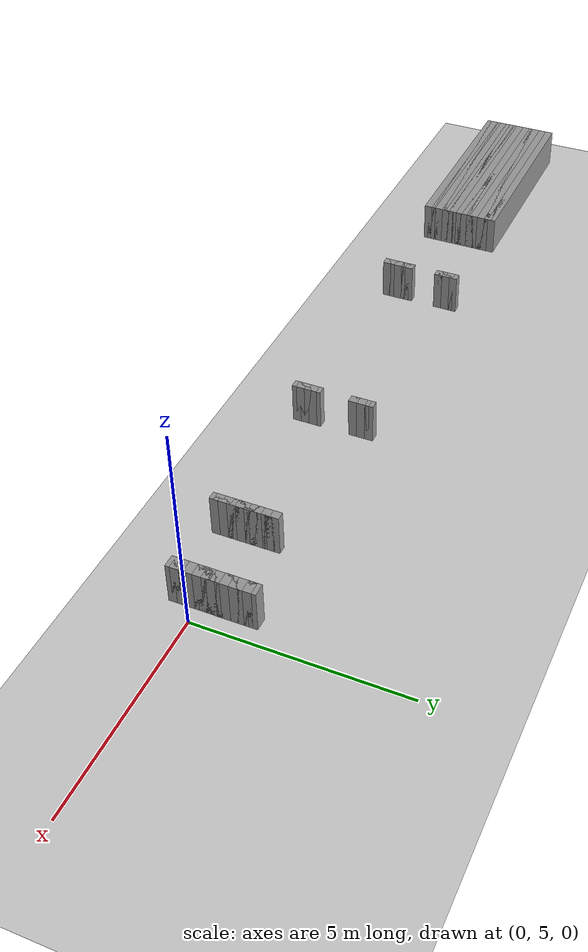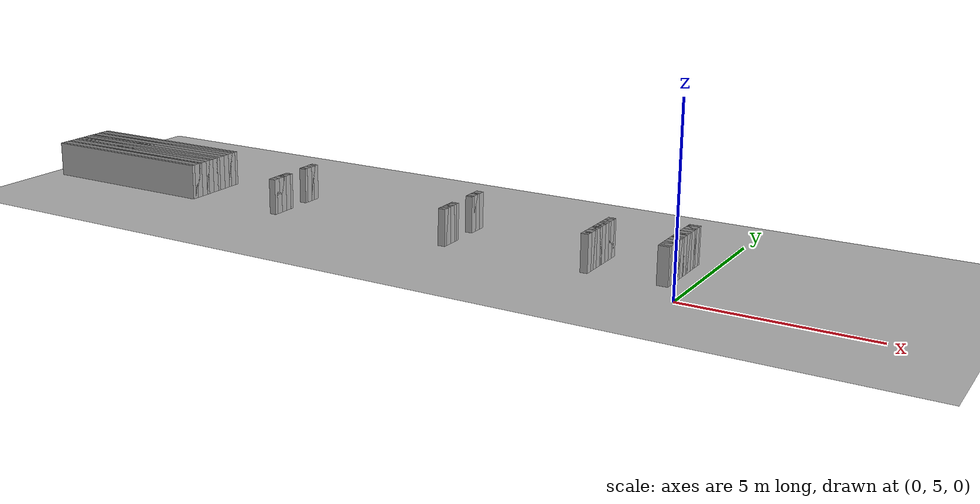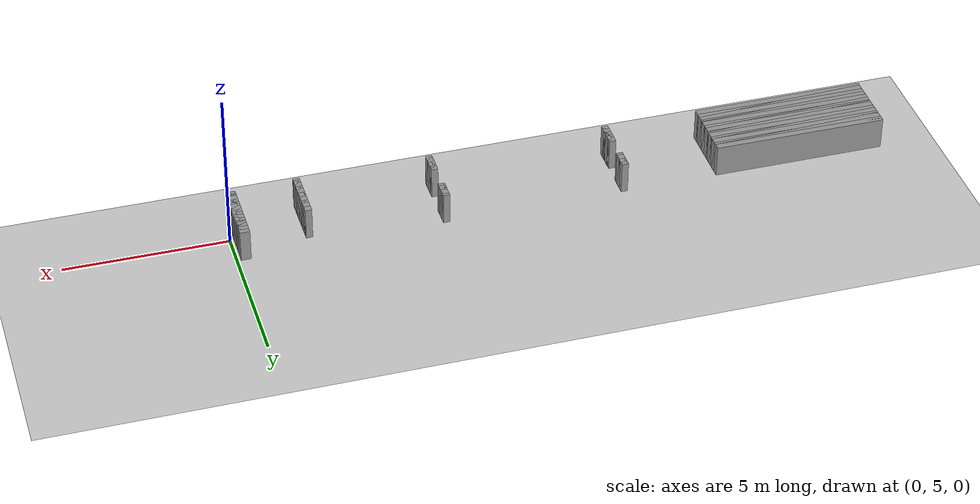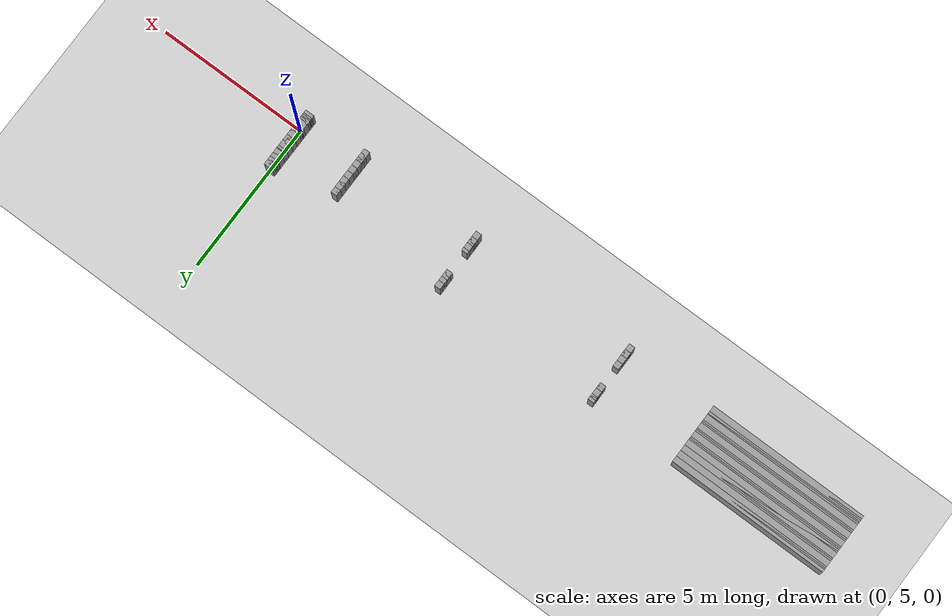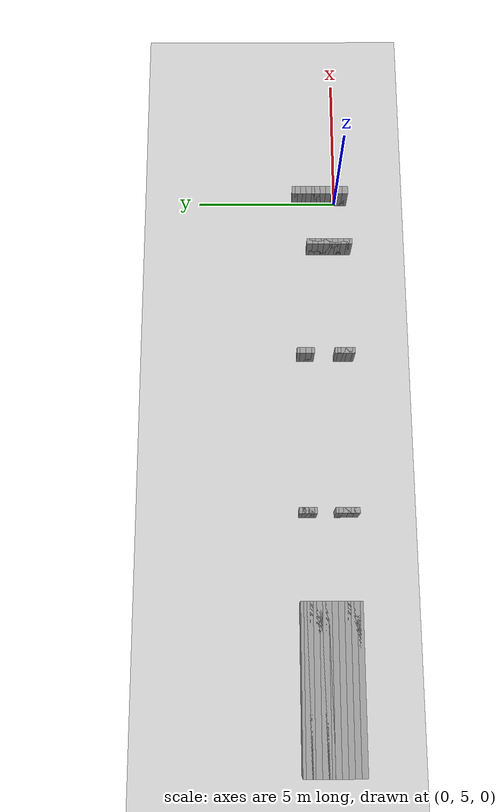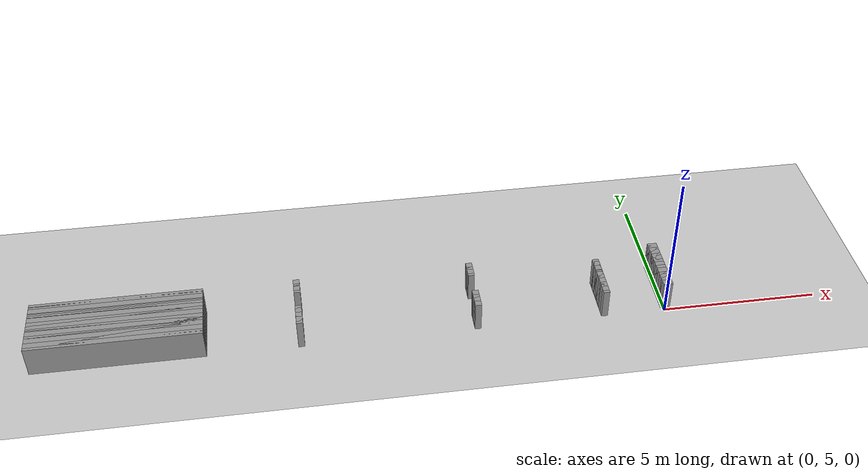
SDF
<sdf version="1.6">
 <world name="GridMap">
  <include><uri>model://sun</uri></include>
  <include><uri>model://ground_plane</uri></include>
  <model name="GridMap">
   <link name="Wall_(21.5,46.0)">
    <collision name="Wall_(21.5,46.0)_Collision">
     <geometry><box><size>0.2 0.2 1.0</size></box></geometry>
     <pose>-2.15 4.6000000000000005 0.5 0 -0 0</pose>
    </collision>
    <visual name="Wall_(21.5,46.0)_Visual">
     <geometry><box><size>0.2 0.2 1.0</size></box></geometry>
     <pose>-2.15 4.6000000000000005 0.5 0 -0 0</pose>
     <material>
      <script><uri>file://media/materials/scripts/gazebo.material</uri><name>Gazebo/Grey</name></script>
      <ambient>1 1 1 1</ambient>
     </material>
     <meta><layer>0</layer></meta>
    </visual>
    <pose>0 0 0.5 0 -0 0</pose>
   </link>
   <link name="Wall_(62.0,46.0)">
    <collision name="Wall_(62.0,46.0)_Collision">
     <geometry><box><size>0.2 0.2 1.0</size></box></geometry>
     <pose>-6.2 4.6000000000000005 0.5 0 -0 0</pose>
    </collision>
    <visual name="Wall_(62.0,46.0)_Visual">
     <geometry><box><size>0.2 0.2 1.0</size></box></geometry>
     <pose>-6.2 4.6000000000000005 0.5 0 -0 0</pose>
     <material>
      <script><uri>file://media/materials/scripts/gazebo.material</uri><name>Gazebo/Grey</name></script>
      <ambient>1 1 1 1</ambient>
     </material>
     <meta><layer>0</layer></meta>
    </visual>
    <pose>0 0 0.5 0 -0 0</pose>
   </link>
   <link name="Wall_(117.0,46.0)">
    <collision name="Wall_(117.0,46.0)_Collision">
     <geometry><box><size>0.2 0.2 1.0</size></box></geometry>
     <pose>-11.700000000000001 4.6000000000000005 0.5 0 -0 0</pose>
    </collision>
    <visual name="Wall_(117.0,46.0)_Visual">
     <geometry><box><size>0.2 0.2 1.0</size></box></geometry>
     <pose>-11.700000000000001 4.6000000000000005 0.5 0 -0 0</pose>
     <material>
      <script><uri>file://media/materials/scripts/gazebo.material</uri><name>Gazebo/Grey</name></script>
      <ambient>1 1 1 1</ambient>
     </material>
     <meta><layer>0</layer></meta>
    </visual>
    <pose>0 0 0.5 0 -0 0</pose>
   </link>
   <link name="Wall_(172.5,46.0)">
    <collision name="Wall_(172.5,46.0)_Collision">
     <geometry><box><size>5.300000000000001 0.2 1.0</size></box></geometry>
     <pose>-17.25 4.6000000000000005 0.5 0 -0 0</pose>
    </collision>
    <visual name="Wall_(172.5,46.0)_Visual">
     <geometry><box><size>5.300000000000001 0.2 1.0</size></box></geometry>
     <pose>-17.25 4.6000000000000005 0.5 0 -0 0</pose>
     <material>
      <script><uri>file://media/materials/scripts/gazebo.material</uri><name>Gazebo/Grey</name></script>
      <ambient>1 1 1 1</ambient>
     </material>
     <meta><layer>0</layer></meta>
    </visual>
    <pose>0 0 0.5 0 -0 0</pose>
   </link>
   <link name="Wall_(1.5,47.0)">
    <collision name="Wall_(1.5,47.0)_Collision">
     <geometry><box><size>0.30000000000000004 0.2 1.0</size></box></geometry>
     <pose>-0.15000000000000002 4.7 0.5 0 -0 0</pose>
    </collision>
    <visual name="Wall_(1.5,47.0)_Visual">
     <geometry><box><size>0.30000000000000004 0.2 1.0</size></box></geometry>
     <pose>-0.15000000000000002 4.7 0.5 0 -0 0</pose>
     <material>
      <script><uri>file://media/materials/scripts/gazebo.material</uri><name>Gazebo/Grey</name></script>
      <ambient>1 1 1 1</ambient>
     </material>
     <meta><layer>0</layer></meta>
    </visual>
    <pose>0 0 0.5 0 -0 0</pose>
   </link>
   <link name="Wall_(21.5,47.0)">
    <collision name="Wall_(21.5,47.0)_Collision">
     <geometry><box><size>0.2 0.2 1.0</size></box></geometry>
     <pose>-2.15 4.7 0.5 0 -0 0</pose>
    </collision>
    <visual name="Wall_(21.5,47.0)_Visual">
     <geometry><box><size>0.2 0.2 1.0</size></box></geometry>
     <pose>-2.15 4.7 0.5 0 -0 0</pose>
     <material>
      <script><uri>file://media/materials/scripts/gazebo.material</uri><name>Gazebo/Grey</name></script>
      <ambient>1 1 1 1</ambient>
     </material>
     <meta><layer>0</layer></meta>
    </visual>
    <pose>0 0 0.5 0 -0 0</pose>
   </link>
   <link name="Wall_(62.0,47.0)">
    <collision name="Wall_(62.0,47.0)_Collision">
     <geometry><box><size>0.2 0.2 1.0</size></box></geometry>
     <pose>-6.2 4.7 0.5 0 -0 0</pose>
    </collision>
    <visual name="Wall_(62.0,47.0)_Visual">
     <geometry><box><size>0.2 0.2 1.0</size></box></geometry>
     <pose>-6.2 4.7 0.5 0 -0 0</pose>
     <material>
      <script><uri>file://media/materials/scripts/gazebo.material</uri><name>Gazebo/Grey</name></script>
      <ambient>1 1 1 1</ambient>
     </material>
     <meta><layer>0</layer></meta>
    </visual>
    <pose>0 0 0.5 0 -0 0</pose>
   </link>
   <link name="Wall_(117.0,47.0)">
    <collision name="Wall_(117.0,47.0)_Collision">
     <geometry><box><size>0.2 0.2 1.0</size></box></geometry>
     <pose>-11.700000000000001 4.7 0.5 0 -0 0</pose>
    </collision>
    <visual name="Wall_(117.0,47.0)_Visual">
     <geometry><box><size>0.2 0.2 1.0</size></box></geometry>
     <pose>-11.700000000000001 4.7 0.5 0 -0 0</pose>
     <material>
      <script><uri>file://media/materials/scripts/gazebo.material</uri><name>Gazebo/Grey</name></script>
      <ambient>1 1 1 1</ambient>
     </material>
     <meta><layer>0</layer></meta>
    </visual>
    <pose>0 0 0.5 0 -0 0</pose>
   </link>
   <link name="Wall_(172.5,47.0)">
    <collision name="Wall_(172.5,47.0)_Collision">
     <geometry><box><size>5.300000000000001 0.2 1.0</size></box></geometry>
     <pose>-17.25 4.7 0.5 0 -0 0</pose>
    </collision>
    <visual name="Wall_(172.5,47.0)_Visual">
     <geometry><box><size>5.300000000000001 0.2 1.0</size></box></geometry>
     <pose>-17.25 4.7 0.5 0 -0 0</pose>
     <material>
      <script><uri>file://media/materials/scripts/gazebo.material</uri><name>Gazebo/Grey</name></script>
      <ambient>1 1 1 1</ambient>
     </material>
     <meta><layer>0</layer></meta>
    </visual>
    <pose>0 0 0.5 0 -0 0</pose>
   </link>
   <link name="Wall_(1.5,48.0)">
    <collision name="Wall_(1.5,48.0)_Collision">
     <geometry><box><size>0.30000000000000004 0.2 1.0</size></box></geometry>
     <pose>-0.15000000000000002 4.800000000000001 0.5 0 -0 0</pose>
    </collision>
    <visual name="Wall_(1.5,48.0)_Visual">
     <geometry><box><size>0.30000000000000004 0.2 1.0</size></box></geometry>
     <pose>-0.15000000000000002 4.800000000000001 0.5 0 -0 0</pose>
     <material>
      <script><uri>file://media/materials/scripts/gazebo.material</uri><name>Gazebo/Grey</name></script>
      <ambient>1 1 1 1</ambient>
     </material>
     <meta><layer>0</layer></meta>
    </visual>
    <pose>0 0 0.5 0 -0 0</pose>
   </link>
   <link name="Wall_(21.5,48.0)">
    <collision name="Wall_(21.5,48.0)_Collision">
     <geometry><box><size>0.2 0.2 1.0</size></box></geometry>
     <pose>-2.15 4.800000000000001 0.5 0 -0 0</pose>
    </collision>
    <visual name="Wall_(21.5,48.0)_Visual">
     <geometry><box><size>0.2 0.2 1.0</size></box></geometry>
     <pose>-2.15 4.800000000000001 0.5 0 -0 0</pose>
     <material>
      <script><uri>file://media/materials/scripts/gazebo.material</uri><name>Gazebo/Grey</name></script>
      <ambient>1 1 1 1</ambient>
     </material>
     <meta><layer>0</layer></meta>
    </visual>
    <pose>0 0 0.5 0 -0 0</pose>
   </link>
   <link name="Wall_(62.0,48.0)">
    <collision name="Wall_(62.0,48.0)_Collision">
     <geometry><box><size>0.2 0.2 1.0</size></box></geometry>
     <pose>-6.2 4.800000000000001 0.5 0 -0 0</pose>
    </collision>
    <visual name="Wall_(62.0,48.0)_Visual">
     <geometry><box><size>0.2 0.2 1.0</size></box></geometry>
     <pose>-6.2 4.800000000000001 0.5 0 -0 0</pose>
     <material>
      <script><uri>file://media/materials/scripts/gazebo.material</uri><name>Gazebo/Grey</name></script>
      <ambient>1 1 1 1</ambient>
     </material>
     <meta><layer>0</layer></meta>
    </visual>
    <pose>0 0 0.5 0 -0 0</pose>
   </link>
   <link name="Wall_(117.0,48.0)">
    <collision name="Wall_(117.0,48.0)_Collision">
     <geometry><box><size>0.2 0.2 1.0</size></box></geometry>
     <pose>-11.700000000000001 4.800000000000001 0.5 0 -0 0</pose>
    </collision>
    <visual name="Wall_(117.0,48.0)_Visual">
     <geometry><box><size>0.2 0.2 1.0</size></box></geometry>
     <pose>-11.700000000000001 4.800000000000001 0.5 0 -0 0</pose>
     <material>
      <script><uri>file://media/materials/scripts/gazebo.material</uri><name>Gazebo/Grey</name></script>
      <ambient>1 1 1 1</ambient>
     </material>
     <meta><layer>0</layer></meta>
    </visual>
    <pose>0 0 0.5 0 -0 0</pose>
   </link>
   <link name="Wall_(172.5,48.0)">
    <collision name="Wall_(172.5,48.0)_Collision">
     <geometry><box><size>5.300000000000001 0.2 1.0</size></box></geometry>
     <pose>-17.25 4.800000000000001 0.5 0 -0 0</pose>
    </collision>
    <visual name="Wall_(172.5,48.0)_Visual">
     <geometry><box><size>5.300000000000001 0.2 1.0</size></box></geometry>
     <pose>-17.25 4.800000000000001 0.5 0 -0 0</pose>
     <material>
      <script><uri>file://media/materials/scripts/gazebo.material</uri><name>Gazebo/Grey</name></script>
      <ambient>1 1 1 1</ambient>
     </material>
     <meta><layer>0</layer></meta>
    </visual>
    <pose>0 0 0.5 0 -0 0</pose>
   </link>
   <link name="Wall_(1.5,49.0)">
    <collision name="Wall_(1.5,49.0)_Collision">
     <geometry><box><size>0.30000000000000004 0.2 1.0</size></box></geometry>
     <pose>-0.15000000000000002 4.9 0.5 0 -0 0</pose>
    </collision>
    <visual name="Wall_(1.5,49.0)_Visual">
     <geometry><box><size>0.30000000000000004 0.2 1.0</size></box></geometry>
     <pose>-0.15000000000000002 4.9 0.5 0 -0 0</pose>
     <material>
      <script><uri>file://media/materials/scripts/gazebo.material</uri><name>Gazebo/Grey</name></script>
      <ambient>1 1 1 1</ambient>
     </material>
     <meta><layer>0</layer></meta>
    </visual>
    <pose>0 0 0.5 0 -0 0</pose>
   </link>
   <link name="Wall_(21.5,49.0)">
    <collision name="Wall_(21.5,49.0)_Collision">
     <geometry><box><size>0.2 0.2 1.0</size></box></geometry>
     <pose>-2.15 4.9 0.5 0 -0 0</pose>
    </collision>
    <visual name="Wall_(21.5,49.0)_Visual">
     <geometry><box><size>0.2 0.2 1.0</size></box></geometry>
     <pose>-2.15 4.9 0.5 0 -0 0</pose>
     <material>
      <script><uri>file://media/materials/scripts/gazebo.material</uri><name>Gazebo/Grey</name></script>
      <ambient>1 1 1 1</ambient>
     </material>
     <meta><layer>0</layer></meta>
    </visual>
    <pose>0 0 0.5 0 -0 0</pose>
   </link>
   <link name="Wall_(62.0,49.0)">
    <collision name="Wall_(62.0,49.0)_Collision">
     <geometry><box><size>0.2 0.2 1.0</size></box></geometry>
     <pose>-6.2 4.9 0.5 0 -0 0</pose>
    </collision>
    <visual name="Wall_(62.0,49.0)_Visual">
     <geometry><box><size>0.2 0.2 1.0</size></box></geometry>
     <pose>-6.2 4.9 0.5 0 -0 0</pose>
     <material>
      <script><uri>file://media/materials/scripts/gazebo.material</uri><name>Gazebo/Grey</name></script>
      <ambient>1 1 1 1</ambient>
     </material>
     <meta><layer>0</layer></meta>
    </visual>
    <pose>0 0 0.5 0 -0 0</pose>
   </link>
   <link name="Wall_(117.0,49.0)">
    <collision name="Wall_(117.0,49.0)_Collision">
     <geometry><box><size>0.2 0.2 1.0</size></box></geometry>
     <pose>-11.700000000000001 4.9 0.5 0 -0 0</pose>
    </collision>
    <visual name="Wall_(117.0,49.0)_Visual">
     <geometry><box><size>0.2 0.2 1.0</size></box></geometry>
     <pose>-11.700000000000001 4.9 0.5 0 -0 0</pose>
     <material>
      <script><uri>file://media/materials/scripts/gazebo.material</uri><name>Gazebo/Grey</name></script>
      <ambient>1 1 1 1</ambient>
     </material>
     <meta><layer>0</layer></meta>
    </visual>
    <pose>0 0 0.5 0 -0 0</pose>
   </link>
   <link name="Wall_(172.5,49.0)">
    <collision name="Wall_(172.5,49.0)_Collision">
     <geometry><box><size>5.300000000000001 0.2 1.0</size></box></geometry>
     <pose>-17.25 4.9 0.5 0 -0 0</pose>
    </collision>
    <visual name="Wall_(172.5,49.0)_Visual">
     <geometry><box><size>5.300000000000001 0.2 1.0</size></box></geometry>
     <pose>-17.25 4.9 0.5 0 -0 0</pose>
     <material>
      <script><uri>file://media/materials/scripts/gazebo.material</uri><name>Gazebo/Grey</name></script>
      <ambient>1 1 1 1</ambient>
     </material>
     <meta><layer>0</layer></meta>
    </visual>
    <pose>0 0 0.5 0 -0 0</pose>
   </link>
   <link name="Wall_(1.5,50.0)">
    <collision name="Wall_(1.5,50.0)_Collision">
     <geometry><box><size>0.30000000000000004 0.2 1.0</size></box></geometry>
     <pose>-0.15000000000000002 5.0 0.5 0 -0 0</pose>
    </collision>
    <visual name="Wall_(1.5,50.0)_Visual">
     <geometry><box><size>0.30000000000000004 0.2 1.0</size></box></geometry>
     <pose>-0.15000000000000002 5.0 0.5 0 -0 0</pose>
     <material>
      <script><uri>file://media/materials/scripts/gazebo.material</uri><name>Gazebo/Grey</name></script>
      <ambient>1 1 1 1</ambient>
     </material>
     <meta><layer>0</layer></meta>
    </visual>
    <pose>0 0 0.5 0 -0 0</pose>
   </link>
   <link name="Wall_(21.5,50.0)">
    <collision name="Wall_(21.5,50.0)_Collision">
     <geometry><box><size>0.2 0.2 1.0</size></box></geometry>
     <pose>-2.15 5.0 0.5 0 -0 0</pose>
    </collision>
    <visual name="Wall_(21.5,50.0)_Visual">
     <geometry><box><size>0.2 0.2 1.0</size></box></geometry>
     <pose>-2.15 5.0 0.5 0 -0 0</pose>
     <material>
      <script><uri>file://media/materials/scripts/gazebo.material</uri><name>Gazebo/Grey</name></script>
      <ambient>1 1 1 1</ambient>
     </material>
     <meta><layer>0</layer></meta>
    </visual>
    <pose>0 0 0.5 0 -0 0</pose>
   </link>
   <link name="Wall_(62.0,50.0)">
    <collision name="Wall_(62.0,50.0)_Collision">
     <geometry><box><size>0.2 0.2 1.0</size></box></geometry>
     <pose>-6.2 5.0 0.5 0 -0 0</pose>
    </collision>
    <visual name="Wall_(62.0,50.0)_Visual">
     <geometry><box><size>0.2 0.2 1.0</size></box></geometry>
     <pose>-6.2 5.0 0.5 0 -0 0</pose>
     <material>
      <script><uri>file://media/materials/scripts/gazebo.material</uri><name>Gazebo/Grey</name></script>
      <ambient>1 1 1 1</ambient>
     </material>
     <meta><layer>0</layer></meta>
    </visual>
    <pose>0 0 0.5 0 -0 0</pose>
   </link>
   <link name="Wall_(117.0,50.0)">
    <collision name="Wall_(117.0,50.0)_Collision">
     <geometry><box><size>0.2 0.2 1.0</size></box></geometry>
     <pose>-11.700000000000001 5.0 0.5 0 -0 0</pose>
    </collision>
    <visual name="Wall_(117.0,50.0)_Visual">
     <geometry><box><size>0.2 0.2 1.0</size></box></geometry>
     <pose>-11.700000000000001 5.0 0.5 0 -0 0</pose>
     <material>
      <script><uri>file://media/materials/scripts/gazebo.material</uri><name>Gazebo/Grey</name></script>
      <ambient>1 1 1 1</ambient>
     </material>
     <meta><layer>0</layer></meta>
    </visual>
    <pose>0 0 0.5 0 -0 0</pose>
   </link>
   <link name="Wall_(172.5,50.0)">
    <collision name="Wall_(172.5,50.0)_Collision">
     <geometry><box><size>5.300000000000001 0.2 1.0</size></box></geometry>
     <pose>-17.25 5.0 0.5 0 -0 0</pose>
    </collision>
    <visual name="Wall_(172.5,50.0)_Visual">
     <geometry><box><size>5.300000000000001 0.2 1.0</size></box></geometry>
     <pose>-17.25 5.0 0.5 0 -0 0</pose>
     <material>
      <script><uri>file://media/materials/scripts/gazebo.material</uri><name>Gazebo/Grey</name></script>
      <ambient>1 1 1 1</ambient>
     </material>
     <meta><layer>0</layer></meta>
    </visual>
    <pose>0 0 0.5 0 -0 0</pose>
   </link>
   <link name="Wall_(1.5,51.0)">
    <collision name="Wall_(1.5,51.0)_Collision">
     <geometry><box><size>0.30000000000000004 0.2 1.0</size></box></geometry>
     <pose>-0.15000000000000002 5.1000000000000005 0.5 0 -0 0</pose>
    </collision>
    <visual name="Wall_(1.5,51.0)_Visual">
     <geometry><box><size>0.30000000000000004 0.2 1.0</size></box></geometry>
     <pose>-0.15000000000000002 5.1000000000000005 0.5 0 -0 0</pose>
     <material>
      <script><uri>file://media/materials/scripts/gazebo.material</uri><name>Gazebo/Grey</name></script>
      <ambient>1 1 1 1</ambient>
     </material>
     <meta><layer>0</layer></meta>
    </visual>
    <pose>0 0 0.5 0 -0 0</pose>
   </link>
   <link name="Wall_(21.5,51.0)">
    <collision name="Wall_(21.5,51.0)_Collision">
     <geometry><box><size>0.2 0.2 1.0</size></box></geometry>
     <pose>-2.15 5.1000000000000005 0.5 0 -0 0</pose>
    </collision>
    <visual name="Wall_(21.5,51.0)_Visual">
     <geometry><box><size>0.2 0.2 1.0</size></box></geometry>
     <pose>-2.15 5.1000000000000005 0.5 0 -0 0</pose>
     <material>
      <script><uri>file://media/materials/scripts/gazebo.material</uri><name>Gazebo/Grey</name></script>
      <ambient>1 1 1 1</ambient>
     </material>
     <meta><layer>0</layer></meta>
    </visual>
    <pose>0 0 0.5 0 -0 0</pose>
   </link>
   <link name="Wall_(62.0,51.0)">
    <collision name="Wall_(62.0,51.0)_Collision">
     <geometry><box><size>0.2 0.2 1.0</size></box></geometry>
     <pose>-6.2 5.1000000000000005 0.5 0 -0 0</pose>
    </collision>
    <visual name="Wall_(62.0,51.0)_Visual">
     <geometry><box><size>0.2 0.2 1.0</size></box></geometry>
     <pose>-6.2 5.1000000000000005 0.5 0 -0 0</pose>
     <material>
      <script><uri>file://media/materials/scripts/gazebo.material</uri><name>Gazebo/Grey</name></script>
      <ambient>1 1 1 1</ambient>
     </material>
     <meta><layer>0</layer></meta>
    </visual>
    <pose>0 0 0.5 0 -0 0</pose>
   </link>
   <link name="Wall_(117.0,51.0)">
    <collision name="Wall_(117.0,51.0)_Collision">
     <geometry><box><size>0.2 0.2 1.0</size></box></geometry>
     <pose>-11.700000000000001 5.1000000000000005 0.5 0 -0 0</pose>
    </collision>
    <visual name="Wall_(117.0,51.0)_Visual">
     <geometry><box><size>0.2 0.2 1.0</size></box></geometry>
     <pose>-11.700000000000001 5.1000000000000005 0.5 0 -0 0</pose>
     <material>
      <script><uri>file://media/materials/scripts/gazebo.material</uri><name>Gazebo/Grey</name></script>
      <ambient>1 1 1 1</ambient>
     </material>
     <meta><layer>0</layer></meta>
    </visual>
    <pose>0 0 0.5 0 -0 0</pose>
   </link>
   <link name="Wall_(172.5,51.0)">
    <collision name="Wall_(172.5,51.0)_Collision">
     <geometry><box><size>5.300000000000001 0.2 1.0</size></box></geometry>
     <pose>-17.25 5.1000000000000005 0.5 0 -0 0</pose>
    </collision>
    <visual name="Wall_(172.5,51.0)_Visual">
     <geometry><box><size>5.300000000000001 0.2 1.0</size></box></geometry>
     <pose>-17.25 5.1000000000000005 0.5 0 -0 0</pose>
     <material>
      <script><uri>file://media/materials/scripts/gazebo.material</uri><name>Gazebo/Grey</name></script>
      <ambient>1 1 1 1</ambient>
     </material>
     <meta><layer>0</layer></meta>
    </visual>
    <pose>0 0 0.5 0 -0 0</pose>
   </link>
   <link name="Wall_(1.5,52.0)">
    <collision name="Wall_(1.5,52.0)_Collision">
     <geometry><box><size>0.30000000000000004 0.2 1.0</size></box></geometry>
     <pose>-0.15000000000000002 5.2 0.5 0 -0 0</pose>
    </collision>
    <visual name="Wall_(1.5,52.0)_Visual">
     <geometry><box><size>0.30000000000000004 0.2 1.0</size></box></geometry>
     <pose>-0.15000000000000002 5.2 0.5 0 -0 0</pose>
     <material>
      <script><uri>file://media/materials/scripts/gazebo.material</uri><name>Gazebo/Grey</name></script>
      <ambient>1 1 1 1</ambient>
     </material>
     <meta><layer>0</layer></meta>
    </visual>
    <pose>0 0 0.5 0 -0 0</pose>
   </link>
   <link name="Wall_(21.5,52.0)">
    <collision name="Wall_(21.5,52.0)_Collision">
     <geometry><box><size>0.2 0.2 1.0</size></box></geometry>
     <pose>-2.15 5.2 0.5 0 -0 0</pose>
    </collision>
    <visual name="Wall_(21.5,52.0)_Visual">
     <geometry><box><size>0.2 0.2 1.0</size></box></geometry>
     <pose>-2.15 5.2 0.5 0 -0 0</pose>
     <material>
      <script><uri>file://media/materials/scripts/gazebo.material</uri><name>Gazebo/Grey</name></script>
      <ambient>1 1 1 1</ambient>
     </material>
     <meta><layer>0</layer></meta>
    </visual>
    <pose>0 0 0.5 0 -0 0</pose>
   </link>
   <link name="Wall_(117.0,52.0)">
    <collision name="Wall_(117.0,52.0)_Collision">
     <geometry><box><size>0.2 0.2 1.0</size></box></geometry>
     <pose>-11.700000000000001 5.2 0.5 0 -0 0</pose>
    </collision>
    <visual name="Wall_(117.0,52.0)_Visual">
     <geometry><box><size>0.2 0.2 1.0</size></box></geometry>
     <pose>-11.700000000000001 5.2 0.5 0 -0 0</pose>
     <material>
      <script><uri>file://media/materials/scripts/gazebo.material</uri><name>Gazebo/Grey</name></script>
      <ambient>1 1 1 1</ambient>
     </material>
     <meta><layer>0</layer></meta>
    </visual>
    <pose>0 0 0.5 0 -0 0</pose>
   </link>
   <link name="Wall_(172.5,52.0)">
    <collision name="Wall_(172.5,52.0)_Collision">
     <geometry><box><size>5.300000000000001 0.2 1.0</size></box></geometry>
     <pose>-17.25 5.2 0.5 0 -0 0</pose>
    </collision>
    <visual name="Wall_(172.5,52.0)_Visual">
     <geometry><box><size>5.300000000000001 0.2 1.0</size></box></geometry>
     <pose>-17.25 5.2 0.5 0 -0 0</pose>
     <material>
      <script><uri>file://media/materials/scripts/gazebo.material</uri><name>Gazebo/Grey</name></script>
      <ambient>1 1 1 1</ambient>
     </material>
     <meta><layer>0</layer></meta>
    </visual>
    <pose>0 0 0.5 0 -0 0</pose>
   </link>
   <link name="Wall_(1.5,53.0)">
    <collision name="Wall_(1.5,53.0)_Collision">
     <geometry><box><size>0.30000000000000004 0.2 1.0</size></box></geometry>
     <pose>-0.15000000000000002 5.300000000000001 0.5 0 -0 0</pose>
    </collision>
    <visual name="Wall_(1.5,53.0)_Visual">
     <geometry><box><size>0.30000000000000004 0.2 1.0</size></box></geometry>
     <pose>-0.15000000000000002 5.300000000000001 0.5 0 -0 0</pose>
     <material>
      <script><uri>file://media/materials/scripts/gazebo.material</uri><name>Gazebo/Grey</name></script>
      <ambient>1 1 1 1</ambient>
     </material>
     <meta><layer>0</layer></meta>
    </visual>
    <pose>0 0 0.5 0 -0 0</pose>
   </link>
   <link name="Wall_(21.5,53.0)">
    <collision name="Wall_(21.5,53.0)_Collision">
     <geometry><box><size>0.2 0.2 1.0</size></box></geometry>
     <pose>-2.15 5.300000000000001 0.5 0 -0 0</pose>
    </collision>
    <visual name="Wall_(21.5,53.0)_Visual">
     <geometry><box><size>0.2 0.2 1.0</size></box></geometry>
     <pose>-2.15 5.300000000000001 0.5 0 -0 0</pose>
     <material>
      <script><uri>file://media/materials/scripts/gazebo.material</uri><name>Gazebo/Grey</name></script>
      <ambient>1 1 1 1</ambient>
     </material>
     <meta><layer>0</layer></meta>
    </visual>
    <pose>0 0 0.5 0 -0 0</pose>
   </link>
   <link name="Wall_(172.5,53.0)">
    <collision name="Wall_(172.5,53.0)_Collision">
     <geometry><box><size>5.300000000000001 0.2 1.0</size></box></geometry>
     <pose>-17.25 5.300000000000001 0.5 0 -0 0</pose>
    </collision>
    <visual name="Wall_(172.5,53.0)_Visual">
     <geometry><box><size>5.300000000000001 0.2 1.0</size></box></geometry>
     <pose>-17.25 5.300000000000001 0.5 0 -0 0</pose>
     <material>
      <script><uri>file://media/materials/scripts/gazebo.material</uri><name>Gazebo/Grey</name></script>
      <ambient>1 1 1 1</ambient>
     </material>
     <meta><layer>0</layer></meta>
    </visual>
    <pose>0 0 0.5 0 -0 0</pose>
   </link>
   <link name="Wall_(1.5,54.0)">
    <collision name="Wall_(1.5,54.0)_Collision">
     <geometry><box><size>0.30000000000000004 0.2 1.0</size></box></geometry>
     <pose>-0.15000000000000002 5.4 0.5 0 -0 0</pose>
    </collision>
    <visual name="Wall_(1.5,54.0)_Visual">
     <geometry><box><size>0.30000000000000004 0.2 1.0</size></box></geometry>
     <pose>-0.15000000000000002 5.4 0.5 0 -0 0</pose>
     <material>
      <script><uri>file://media/materials/scripts/gazebo.material</uri><name>Gazebo/Grey</name></script>
      <ambient>1 1 1 1</ambient>
     </material>
     <meta><layer>0</layer></meta>
    </visual>
    <pose>0 0 0.5 0 -0 0</pose>
   </link>
   <link name="Wall_(21.5,54.0)">
    <collision name="Wall_(21.5,54.0)_Collision">
     <geometry><box><size>0.2 0.2 1.0</size></box></geometry>
     <pose>-2.15 5.4 0.5 0 -0 0</pose>
    </collision>
    <visual name="Wall_(21.5,54.0)_Visual">
     <geometry><box><size>0.2 0.2 1.0</size></box></geometry>
     <pose>-2.15 5.4 0.5 0 -0 0</pose>
     <material>
      <script><uri>file://media/materials/scripts/gazebo.material</uri><name>Gazebo/Grey</name></script>
      <ambient>1 1 1 1</ambient>
     </material>
     <meta><layer>0</layer></meta>
    </visual>
    <pose>0 0 0.5 0 -0 0</pose>
   </link>
   <link name="Wall_(172.5,54.0)">
    <collision name="Wall_(172.5,54.0)_Collision">
     <geometry><box><size>5.300000000000001 0.2 1.0</size></box></geometry>
     <pose>-17.25 5.4 0.5 0 -0 0</pose>
    </collision>
    <visual name="Wall_(172.5,54.0)_Visual">
     <geometry><box><size>5.300000000000001 0.2 1.0</size></box></geometry>
     <pose>-17.25 5.4 0.5 0 -0 0</pose>
     <material>
      <script><uri>file://media/materials/scripts/gazebo.material</uri><name>Gazebo/Grey</name></script>
      <ambient>1 1 1 1</ambient>
     </material>
     <meta><layer>0</layer></meta>
    </visual>
    <pose>0 0 0.5 0 -0 0</pose>
   </link>
   <link name="Wall_(1.5,55.0)">
    <collision name="Wall_(1.5,55.0)_Collision">
     <geometry><box><size>0.30000000000000004 0.2 1.0</size></box></geometry>
     <pose>-0.15000000000000002 5.5 0.5 0 -0 0</pose>
    </collision>
    <visual name="Wall_(1.5,55.0)_Visual">
     <geometry><box><size>0.30000000000000004 0.2 1.0</size></box></geometry>
     <pose>-0.15000000000000002 5.5 0.5 0 -0 0</pose>
     <material>
      <script><uri>file://media/materials/scripts/gazebo.material</uri><name>Gazebo/Grey</name></script>
      <ambient>1 1 1 1</ambient>
     </material>
     <meta><layer>0</layer></meta>
    </visual>
    <pose>0 0 0.5 0 -0 0</pose>
   </link>
   <link name="Wall_(21.5,55.0)">
    <collision name="Wall_(21.5,55.0)_Collision">
     <geometry><box><size>0.2 0.2 1.0</size></box></geometry>
     <pose>-2.15 5.5 0.5 0 -0 0</pose>
    </collision>
    <visual name="Wall_(21.5,55.0)_Visual">
     <geometry><box><size>0.2 0.2 1.0</size></box></geometry>
     <pose>-2.15 5.5 0.5 0 -0 0</pose>
     <material>
      <script><uri>file://media/materials/scripts/gazebo.material</uri><name>Gazebo/Grey</name></script>
      <ambient>1 1 1 1</ambient>
     </material>
     <meta><layer>0</layer></meta>
    </visual>
    <pose>0 0 0.5 0 -0 0</pose>
   </link>
   <link name="Wall_(172.5,55.0)">
    <collision name="Wall_(172.5,55.0)_Collision">
     <geometry><box><size>5.300000000000001 0.2 1.0</size></box></geometry>
     <pose>-17.25 5.5 0.5 0 -0 0</pose>
    </collision>
    <visual name="Wall_(172.5,55.0)_Visual">
     <geometry><box><size>5.300000000000001 0.2 1.0</size></box></geometry>
     <pose>-17.25 5.5 0.5 0 -0 0</pose>
     <material>
      <script><uri>file://media/materials/scripts/gazebo.material</uri><name>Gazebo/Grey</name></script>
      <ambient>1 1 1 1</ambient>
     </material>
     <meta><layer>0</layer></meta>
    </visual>
    <pose>0 0 0.5 0 -0 0</pose>
   </link>
   <link name="Wall_(1.5,56.0)">
    <collision name="Wall_(1.5,56.0)_Collision">
     <geometry><box><size>0.30000000000000004 0.2 1.0</size></box></geometry>
     <pose>-0.15000000000000002 5.6000000000000005 0.5 0 -0 0</pose>
    </collision>
    <visual name="Wall_(1.5,56.0)_Visual">
     <geometry><box><size>0.30000000000000004 0.2 1.0</size></box></geometry>
     <pose>-0.15000000000000002 5.6000000000000005 0.5 0 -0 0</pose>
     <material>
      <script><uri>file://media/materials/scripts/gazebo.material</uri><name>Gazebo/Grey</name></script>
      <ambient>1 1 1 1</ambient>
     </material>
     <meta><layer>0</layer></meta>
    </visual>
    <pose>0 0 0.5 0 -0 0</pose>
   </link>
   <link name="Wall_(21.5,56.0)">
    <collision name="Wall_(21.5,56.0)_Collision">
     <geometry><box><size>0.2 0.2 1.0</size></box></geometry>
     <pose>-2.15 5.6000000000000005 0.5 0 -0 0</pose>
    </collision>
    <visual name="Wall_(21.5,56.0)_Visual">
     <geometry><box><size>0.2 0.2 1.0</size></box></geometry>
     <pose>-2.15 5.6000000000000005 0.5 0 -0 0</pose>
     <material>
      <script><uri>file://media/materials/scripts/gazebo.material</uri><name>Gazebo/Grey</name></script>
      <ambient>1 1 1 1</ambient>
     </material>
     <meta><layer>0</layer></meta>
    </visual>
    <pose>0 0 0.5 0 -0 0</pose>
   </link>
   <link name="Wall_(172.5,56.0)">
    <collision name="Wall_(172.5,56.0)_Collision">
     <geometry><box><size>5.300000000000001 0.2 1.0</size></box></geometry>
     <pose>-17.25 5.6000000000000005 0.5 0 -0 0</pose>
    </collision>
    <visual name="Wall_(172.5,56.0)_Visual">
     <geometry><box><size>5.300000000000001 0.2 1.0</size></box></geometry>
     <pose>-17.25 5.6000000000000005 0.5 0 -0 0</pose>
     <material>
      <script><uri>file://media/materials/scripts/gazebo.material</uri><name>Gazebo/Grey</name></script>
      <ambient>1 1 1 1</ambient>
     </material>
     <meta><layer>0</layer></meta>
    </visual>
    <pose>0 0 0.5 0 -0 0</pose>
   </link>
   <link name="Wall_(1.5,57.0)">
    <collision name="Wall_(1.5,57.0)_Collision">
     <geometry><box><size>0.30000000000000004 0.2 1.0</size></box></geometry>
     <pose>-0.15000000000000002 5.7 0.5 0 -0 0</pose>
    </collision>
    <visual name="Wall_(1.5,57.0)_Visual">
     <geometry><box><size>0.30000000000000004 0.2 1.0</size></box></geometry>
     <pose>-0.15000000000000002 5.7 0.5 0 -0 0</pose>
     <material>
      <script><uri>file://media/materials/scripts/gazebo.material</uri><name>Gazebo/Grey</name></script>
      <ambient>1 1 1 1</ambient>
     </material>
     <meta><layer>0</layer></meta>
    </visual>
    <pose>0 0 0.5 0 -0 0</pose>
   </link>
   <link name="Wall_(21.5,57.0)">
    <collision name="Wall_(21.5,57.0)_Collision">
     <geometry><box><size>0.2 0.2 1.0</size></box></geometry>
     <pose>-2.15 5.7 0.5 0 -0 0</pose>
    </collision>
    <visual name="Wall_(21.5,57.0)_Visual">
     <geometry><box><size>0.2 0.2 1.0</size></box></geometry>
     <pose>-2.15 5.7 0.5 0 -0 0</pose>
     <material>
      <script><uri>file://media/materials/scripts/gazebo.material</uri><name>Gazebo/Grey</name></script>
      <ambient>1 1 1 1</ambient>
     </material>
     <meta><layer>0</layer></meta>
    </visual>
    <pose>0 0 0.5 0 -0 0</pose>
   </link>
   <link name="Wall_(172.5,57.0)">
    <collision name="Wall_(172.5,57.0)_Collision">
     <geometry><box><size>5.300000000000001 0.2 1.0</size></box></geometry>
     <pose>-17.25 5.7 0.5 0 -0 0</pose>
    </collision>
    <visual name="Wall_(172.5,57.0)_Visual">
     <geometry><box><size>5.300000000000001 0.2 1.0</size></box></geometry>
     <pose>-17.25 5.7 0.5 0 -0 0</pose>
     <material>
      <script><uri>file://media/materials/scripts/gazebo.material</uri><name>Gazebo/Grey</name></script>
      <ambient>1 1 1 1</ambient>
     </material>
     <meta><layer>0</layer></meta>
    </visual>
    <pose>0 0 0.5 0 -0 0</pose>
   </link>
   <link name="Wall_(1.5,58.0)">
    <collision name="Wall_(1.5,58.0)_Collision">
     <geometry><box><size>0.30000000000000004 0.2 1.0</size></box></geometry>
     <pose>-0.15000000000000002 5.800000000000001 0.5 0 -0 0</pose>
    </collision>
    <visual name="Wall_(1.5,58.0)_Visual">
     <geometry><box><size>0.30000000000000004 0.2 1.0</size></box></geometry>
     <pose>-0.15000000000000002 5.800000000000001 0.5 0 -0 0</pose>
     <material>
      <script><uri>file://media/materials/scripts/gazebo.material</uri><name>Gazebo/Grey</name></script>
      <ambient>1 1 1 1</ambient>
     </material>
     <meta><layer>0</layer></meta>
    </visual>
    <pose>0 0 0.5 0 -0 0</pose>
   </link>
   <link name="Wall_(21.5,58.0)">
    <collision name="Wall_(21.5,58.0)_Collision">
     <geometry><box><size>0.2 0.2 1.0</size></box></geometry>
     <pose>-2.15 5.800000000000001 0.5 0 -0 0</pose>
    </collision>
    <visual name="Wall_(21.5,58.0)_Visual">
     <geometry><box><size>0.2 0.2 1.0</size></box></geometry>
     <pose>-2.15 5.800000000000001 0.5 0 -0 0</pose>
     <material>
      <script><uri>file://media/materials/scripts/gazebo.material</uri><name>Gazebo/Grey</name></script>
      <ambient>1 1 1 1</ambient>
     </material>
     <meta><layer>0</layer></meta>
    </visual>
    <pose>0 0 0.5 0 -0 0</pose>
   </link>
   <link name="Wall_(172.5,58.0)">
    <collision name="Wall_(172.5,58.0)_Collision">
     <geometry><box><size>5.300000000000001 0.2 1.0</size></box></geometry>
     <pose>-17.25 5.800000000000001 0.5 0 -0 0</pose>
    </collision>
    <visual name="Wall_(172.5,58.0)_Visual">
     <geometry><box><size>5.300000000000001 0.2 1.0</size></box></geometry>
     <pose>-17.25 5.800000000000001 0.5 0 -0 0</pose>
     <material>
      <script><uri>file://media/materials/scripts/gazebo.material</uri><name>Gazebo/Grey</name></script>
      <ambient>1 1 1 1</ambient>
     </material>
     <meta><layer>0</layer></meta>
    </visual>
    <pose>0 0 0.5 0 -0 0</pose>
   </link>
   <link name="Wall_(1.5,59.0)">
    <collision name="Wall_(1.5,59.0)_Collision">
     <geometry><box><size>0.30000000000000004 0.2 1.0</size></box></geometry>
     <pose>-0.15000000000000002 5.9 0.5 0 -0 0</pose>
    </collision>
    <visual name="Wall_(1.5,59.0)_Visual">
     <geometry><box><size>0.30000000000000004 0.2 1.0</size></box></geometry>
     <pose>-0.15000000000000002 5.9 0.5 0 -0 0</pose>
     <material>
      <script><uri>file://media/materials/scripts/gazebo.material</uri><name>Gazebo/Grey</name></script>
      <ambient>1 1 1 1</ambient>
     </material>
     <meta><layer>0</layer></meta>
    </visual>
    <pose>0 0 0.5 0 -0 0</pose>
   </link>
   <link name="Wall_(21.5,59.0)">
    <collision name="Wall_(21.5,59.0)_Collision">
     <geometry><box><size>0.2 0.2 1.0</size></box></geometry>
     <pose>-2.15 5.9 0.5 0 -0 0</pose>
    </collision>
    <visual name="Wall_(21.5,59.0)_Visual">
     <geometry><box><size>0.2 0.2 1.0</size></box></geometry>
     <pose>-2.15 5.9 0.5 0 -0 0</pose>
     <material>
      <script><uri>file://media/materials/scripts/gazebo.material</uri><name>Gazebo/Grey</name></script>
      <ambient>1 1 1 1</ambient>
     </material>
     <meta><layer>0</layer></meta>
    </visual>
    <pose>0 0 0.5 0 -0 0</pose>
   </link>
   <link name="Wall_(172.5,59.0)">
    <collision name="Wall_(172.5,59.0)_Collision">
     <geometry><box><size>5.300000000000001 0.2 1.0</size></box></geometry>
     <pose>-17.25 5.9 0.5 0 -0 0</pose>
    </collision>
    <visual name="Wall_(172.5,59.0)_Visual">
     <geometry><box><size>5.300000000000001 0.2 1.0</size></box></geometry>
     <pose>-17.25 5.9 0.5 0 -0 0</pose>
     <material>
      <script><uri>file://media/materials/scripts/gazebo.material</uri><name>Gazebo/Grey</name></script>
      <ambient>1 1 1 1</ambient>
     </material>
     <meta><layer>0</layer></meta>
    </visual>
    <pose>0 0 0.5 0 -0 0</pose>
   </link>
   <link name="Wall_(1.5,60.0)">
    <collision name="Wall_(1.5,60.0)_Collision">
     <geometry><box><size>0.30000000000000004 0.2 1.0</size></box></geometry>
     <pose>-0.15000000000000002 6.0 0.5 0 -0 0</pose>
    </collision>
    <visual name="Wall_(1.5,60.0)_Visual">
     <geometry><box><size>0.30000000000000004 0.2 1.0</size></box></geometry>
     <pose>-0.15000000000000002 6.0 0.5 0 -0 0</pose>
     <material>
      <script><uri>file://media/materials/scripts/gazebo.material</uri><name>Gazebo/Grey</name></script>
      <ambient>1 1 1 1</ambient>
     </material>
     <meta><layer>0</layer></meta>
    </visual>
    <pose>0 0 0.5 0 -0 0</pose>
   </link>
   <link name="Wall_(21.5,60.0)">
    <collision name="Wall_(21.5,60.0)_Collision">
     <geometry><box><size>0.2 0.2 1.0</size></box></geometry>
     <pose>-2.15 6.0 0.5 0 -0 0</pose>
    </collision>
    <visual name="Wall_(21.5,60.0)_Visual">
     <geometry><box><size>0.2 0.2 1.0</size></box></geometry>
     <pose>-2.15 6.0 0.5 0 -0 0</pose>
     <material>
      <script><uri>file://media/materials/scripts/gazebo.material</uri><name>Gazebo/Grey</name></script>
      <ambient>1 1 1 1</ambient>
     </material>
     <meta><layer>0</layer></meta>
    </visual>
    <pose>0 0 0.5 0 -0 0</pose>
   </link>
   <link name="Wall_(62.0,60.0)">
    <collision name="Wall_(62.0,60.0)_Collision">
     <geometry><box><size>0.2 0.2 1.0</size></box></geometry>
     <pose>-6.2 6.0 0.5 0 -0 0</pose>
    </collision>
    <visual name="Wall_(62.0,60.0)_Visual">
     <geometry><box><size>0.2 0.2 1.0</size></box></geometry>
     <pose>-6.2 6.0 0.5 0 -0 0</pose>
     <material>
      <script><uri>file://media/materials/scripts/gazebo.material</uri><name>Gazebo/Grey</name></script>
      <ambient>1 1 1 1</ambient>
     </material>
     <meta><layer>0</layer></meta>
    </visual>
    <pose>0 0 0.5 0 -0 0</pose>
   </link>
   <link name="Wall_(117.0,60.0)">
    <collision name="Wall_(117.0,60.0)_Collision">
     <geometry><box><size>0.2 0.2 1.0</size></box></geometry>
     <pose>-11.700000000000001 6.0 0.5 0 -0 0</pose>
    </collision>
    <visual name="Wall_(117.0,60.0)_Visual">
     <geometry><box><size>0.2 0.2 1.0</size></box></geometry>
     <pose>-11.700000000000001 6.0 0.5 0 -0 0</pose>
     <material>
      <script><uri>file://media/materials/scripts/gazebo.material</uri><name>Gazebo/Grey</name></script>
      <ambient>1 1 1 1</ambient>
     </material>
     <meta><layer>0</layer></meta>
    </visual>
    <pose>0 0 0.5 0 -0 0</pose>
   </link>
   <link name="Wall_(172.5,60.0)">
    <collision name="Wall_(172.5,60.0)_Collision">
     <geometry><box><size>5.300000000000001 0.2 1.0</size></box></geometry>
     <pose>-17.25 6.0 0.5 0 -0 0</pose>
    </collision>
    <visual name="Wall_(172.5,60.0)_Visual">
     <geometry><box><size>5.300000000000001 0.2 1.0</size></box></geometry>
     <pose>-17.25 6.0 0.5 0 -0 0</pose>
     <material>
      <script><uri>file://media/materials/scripts/gazebo.material</uri><name>Gazebo/Grey</name></script>
      <ambient>1 1 1 1</ambient>
     </material>
     <meta><layer>0</layer></meta>
    </visual>
    <pose>0 0 0.5 0 -0 0</pose>
   </link>
   <link name="Wall_(1.5,61.0)">
    <collision name="Wall_(1.5,61.0)_Collision">
     <geometry><box><size>0.30000000000000004 0.2 1.0</size></box></geometry>
     <pose>-0.15000000000000002 6.1000000000000005 0.5 0 -0 0</pose>
    </collision>
    <visual name="Wall_(1.5,61.0)_Visual">
     <geometry><box><size>0.30000000000000004 0.2 1.0</size></box></geometry>
     <pose>-0.15000000000000002 6.1000000000000005 0.5 0 -0 0</pose>
     <material>
      <script><uri>file://media/materials/scripts/gazebo.material</uri><name>Gazebo/Grey</name></script>
      <ambient>1 1 1 1</ambient>
     </material>
     <meta><layer>0</layer></meta>
    </visual>
    <pose>0 0 0.5 0 -0 0</pose>
   </link>
   <link name="Wall_(62.0,61.0)">
    <collision name="Wall_(62.0,61.0)_Collision">
     <geometry><box><size>0.2 0.2 1.0</size></box></geometry>
     <pose>-6.2 6.1000000000000005 0.5 0 -0 0</pose>
    </collision>
    <visual name="Wall_(62.0,61.0)_Visual">
     <geometry><box><size>0.2 0.2 1.0</size></box></geometry>
     <pose>-6.2 6.1000000000000005 0.5 0 -0 0</pose>
     <material>
      <script><uri>file://media/materials/scripts/gazebo.material</uri><name>Gazebo/Grey</name></script>
      <ambient>1 1 1 1</ambient>
     </material>
     <meta><layer>0</layer></meta>
    </visual>
    <pose>0 0 0.5 0 -0 0</pose>
   </link>
   <link name="Wall_(117.0,61.0)">
    <collision name="Wall_(117.0,61.0)_Collision">
     <geometry><box><size>0.2 0.2 1.0</size></box></geometry>
     <pose>-11.700000000000001 6.1000000000000005 0.5 0 -0 0</pose>
    </collision>
    <visual name="Wall_(117.0,61.0)_Visual">
     <geometry><box><size>0.2 0.2 1.0</size></box></geometry>
     <pose>-11.700000000000001 6.1000000000000005 0.5 0 -0 0</pose>
     <material>
      <script><uri>file://media/materials/scripts/gazebo.material</uri><name>Gazebo/Grey</name></script>
      <ambient>1 1 1 1</ambient>
     </material>
     <meta><layer>0</layer></meta>
    </visual>
    <pose>0 0 0.5 0 -0 0</pose>
   </link>
   <link name="Wall_(172.5,61.0)">
    <collision name="Wall_(172.5,61.0)_Collision">
     <geometry><box><size>5.300000000000001 0.2 1.0</size></box></geometry>
     <pose>-17.25 6.1000000000000005 0.5 0 -0 0</pose>
    </collision>
    <visual name="Wall_(172.5,61.0)_Visual">
     <geometry><box><size>5.300000000000001 0.2 1.0</size></box></geometry>
     <pose>-17.25 6.1000000000000005 0.5 0 -0 0</pose>
     <material>
      <script><uri>file://media/materials/scripts/gazebo.material</uri><name>Gazebo/Grey</name></script>
      <ambient>1 1 1 1</ambient>
     </material>
     <meta><layer>0</layer></meta>
    </visual>
    <pose>0 0 0.5 0 -0 0</pose>
   </link>
   <link name="Wall_(1.5,62.0)">
    <collision name="Wall_(1.5,62.0)_Collision">
     <geometry><box><size>0.30000000000000004 0.2 1.0</size></box></geometry>
     <pose>-0.15000000000000002 6.2 0.5 0 -0 0</pose>
    </collision>
    <visual name="Wall_(1.5,62.0)_Visual">
     <geometry><box><size>0.30000000000000004 0.2 1.0</size></box></geometry>
     <pose>-0.15000000000000002 6.2 0.5 0 -0 0</pose>
     <material>
      <script><uri>file://media/materials/scripts/gazebo.material</uri><name>Gazebo/Grey</name></script>
      <ambient>1 1 1 1</ambient>
     </material>
     <meta><layer>0</layer></meta>
    </visual>
    <pose>0 0 0.5 0 -0 0</pose>
   </link>
   <link name="Wall_(62.0,62.0)">
    <collision name="Wall_(62.0,62.0)_Collision">
     <geometry><box><size>0.2 0.2 1.0</size></box></geometry>
     <pose>-6.2 6.2 0.5 0 -0 0</pose>
    </collision>
    <visual name="Wall_(62.0,62.0)_Visual">
     <geometry><box><size>0.2 0.2 1.0</size></box></geometry>
     <pose>-6.2 6.2 0.5 0 -0 0</pose>
     <material>
      <script><uri>file://media/materials/scripts/gazebo.material</uri><name>Gazebo/Grey</name></script>
      <ambient>1 1 1 1</ambient>
     </material>
     <meta><layer>0</layer></meta>
    </visual>
    <pose>0 0 0.5 0 -0 0</pose>
   </link>
   <link name="Wall_(117.0,62.0)">
    <collision name="Wall_(117.0,62.0)_Collision">
     <geometry><box><size>0.2 0.2 1.0</size></box></geometry>
     <pose>-11.700000000000001 6.2 0.5 0 -0 0</pose>
    </collision>
    <visual name="Wall_(117.0,62.0)_Visual">
     <geometry><box><size>0.2 0.2 1.0</size></box></geometry>
     <pose>-11.700000000000001 6.2 0.5 0 -0 0</pose>
     <material>
      <script><uri>file://media/materials/scripts/gazebo.material</uri><name>Gazebo/Grey</name></script>
      <ambient>1 1 1 1</ambient>
     </material>
     <meta><layer>0</layer></meta>
    </visual>
    <pose>0 0 0.5 0 -0 0</pose>
   </link>
   <link name="Wall_(172.5,62.0)">
    <collision name="Wall_(172.5,62.0)_Collision">
     <geometry><box><size>5.300000000000001 0.2 1.0</size></box></geometry>
     <pose>-17.25 6.2 0.5 0 -0 0</pose>
    </collision>
    <visual name="Wall_(172.5,62.0)_Visual">
     <geometry><box><size>5.300000000000001 0.2 1.0</size></box></geometry>
     <pose>-17.25 6.2 0.5 0 -0 0</pose>
     <material>
      <script><uri>file://media/materials/scripts/gazebo.material</uri><name>Gazebo/Grey</name></script>
      <ambient>1 1 1 1</ambient>
     </material>
     <meta><layer>0</layer></meta>
    </visual>
    <pose>0 0 0.5 0 -0 0</pose>
   </link>
   <link name="Wall_(1.5,63.0)">
    <collision name="Wall_(1.5,63.0)_Collision">
     <geometry><box><size>0.30000000000000004 0.2 1.0</size></box></geometry>
     <pose>-0.15000000000000002 6.300000000000001 0.5 0 -0 0</pose>
    </collision>
    <visual name="Wall_(1.5,63.0)_Visual">
     <geometry><box><size>0.30000000000000004 0.2 1.0</size></box></geometry>
     <pose>-0.15000000000000002 6.300000000000001 0.5 0 -0 0</pose>
     <material>
      <script><uri>file://media/materials/scripts/gazebo.material</uri><name>Gazebo/Grey</name></script>
      <ambient>1 1 1 1</ambient>
     </material>
     <meta><layer>0</layer></meta>
    </visual>
    <pose>0 0 0.5 0 -0 0</pose>
   </link>
   <link name="Wall_(62.0,63.0)">
    <collision name="Wall_(62.0,63.0)_Collision">
     <geometry><box><size>0.2 0.2 1.0</size></box></geometry>
     <pose>-6.2 6.300000000000001 0.5 0 -0 0</pose>
    </collision>
    <visual name="Wall_(62.0,63.0)_Visual">
     <geometry><box><size>0.2 0.2 1.0</size></box></geometry>
     <pose>-6.2 6.300000000000001 0.5 0 -0 0</pose>
     <material>
      <script><uri>file://media/materials/scripts/gazebo.material</uri><name>Gazebo/Grey</name></script>
      <ambient>1 1 1 1</ambient>
     </material>
     <meta><layer>0</layer></meta>
    </visual>
    <pose>0 0 0.5 0 -0 0</pose>
   </link>
   <link name="Wall_(117.0,63.0)">
    <collision name="Wall_(117.0,63.0)_Collision">
     <geometry><box><size>0.2 0.2 1.0</size></box></geometry>
     <pose>-11.700000000000001 6.300000000000001 0.5 0 -0 0</pose>
    </collision>
    <visual name="Wall_(117.0,63.0)_Visual">
     <geometry><box><size>0.2 0.2 1.0</size></box></geometry>
     <pose>-11.700000000000001 6.300000000000001 0.5 0 -0 0</pose>
     <material>
      <script><uri>file://media/materials/scripts/gazebo.material</uri><name>Gazebo/Grey</name></script>
      <ambient>1 1 1 1</ambient>
     </material>
     <meta><layer>0</layer></meta>
    </visual>
    <pose>0 0 0.5 0 -0 0</pose>
   </link>
   <link name="Wall_(172.5,63.0)">
    <collision name="Wall_(172.5,63.0)_Collision">
     <geometry><box><size>5.300000000000001 0.2 1.0</size></box></geometry>
     <pose>-17.25 6.300000000000001 0.5 0 -0 0</pose>
    </collision>
    <visual name="Wall_(172.5,63.0)_Visual">
     <geometry><box><size>5.300000000000001 0.2 1.0</size></box></geometry>
     <pose>-17.25 6.300000000000001 0.5 0 -0 0</pose>
     <material>
      <script><uri>file://media/materials/scripts/gazebo.material</uri><name>Gazebo/Grey</name></script>
      <ambient>1 1 1 1</ambient>
     </material>
     <meta><layer>0</layer></meta>
    </visual>
    <pose>0 0 0.5 0 -0 0</pose>
   </link>
   <link name="Wall_(1.5,64.0)">
    <collision name="Wall_(1.5,64.0)_Collision">
     <geometry><box><size>0.30000000000000004 0.2 1.0</size></box></geometry>
     <pose>-0.15000000000000002 6.4 0.5 0 -0 0</pose>
    </collision>
    <visual name="Wall_(1.5,64.0)_Visual">
     <geometry><box><size>0.30000000000000004 0.2 1.0</size></box></geometry>
     <pose>-0.15000000000000002 6.4 0.5 0 -0 0</pose>
     <material>
      <script><uri>file://media/materials/scripts/gazebo.material</uri><name>Gazebo/Grey</name></script>
      <ambient>1 1 1 1</ambient>
     </material>
     <meta><layer>0</layer></meta>
    </visual>
    <pose>0 0 0.5 0 -0 0</pose>
   </link>
   <link name="Wall_(62.0,64.0)">
    <collision name="Wall_(62.0,64.0)_Collision">
     <geometry><box><size>0.2 0.2 1.0</size></box></geometry>
     <pose>-6.2 6.4 0.5 0 -0 0</pose>
    </collision>
    <visual name="Wall_(62.0,64.0)_Visual">
     <geometry><box><size>0.2 0.2 1.0</size></box></geometry>
     <pose>-6.2 6.4 0.5 0 -0 0</pose>
     <material>
      <script><uri>file://media/materials/scripts/gazebo.material</uri><name>Gazebo/Grey</name></script>
      <ambient>1 1 1 1</ambient>
     </material>
     <meta><layer>0</layer></meta>
    </visual>
    <pose>0 0 0.5 0 -0 0</pose>
   </link>
   <link name="Wall_(117.0,64.0)">
    <collision name="Wall_(117.0,64.0)_Collision">
     <geometry><box><size>0.2 0.2 1.0</size></box></geometry>
     <pose>-11.700000000000001 6.4 0.5 0 -0 0</pose>
    </collision>
    <visual name="Wall_(117.0,64.0)_Visual">
     <geometry><box><size>0.2 0.2 1.0</size></box></geometry>
     <pose>-11.700000000000001 6.4 0.5 0 -0 0</pose>
     <material>
      <script><uri>file://media/materials/scripts/gazebo.material</uri><name>Gazebo/Grey</name></script>
      <ambient>1 1 1 1</ambient>
     </material>
     <meta><layer>0</layer></meta>
    </visual>
    <pose>0 0 0.5 0 -0 0</pose>
   </link>
   <link name="Wall_(172.5,64.0)">
    <collision name="Wall_(172.5,64.0)_Collision">
     <geometry><box><size>5.300000000000001 0.2 1.0</size></box></geometry>
     <pose>-17.25 6.4 0.5 0 -0 0</pose>
    </collision>
    <visual name="Wall_(172.5,64.0)_Visual">
     <geometry><box><size>5.300000000000001 0.2 1.0</size></box></geometry>
     <pose>-17.25 6.4 0.5 0 -0 0</pose>
     <material>
      <script><uri>file://media/materials/scripts/gazebo.material</uri><name>Gazebo/Grey</name></script>
      <ambient>1 1 1 1</ambient>
     </material>
     <meta><layer>0</layer></meta>
    </visual>
    <pose>0 0 0.5 0 -0 0</pose>
   </link>
   <link name="Wall_(1.5,65.0)">
    <collision name="Wall_(1.5,65.0)_Collision">
     <geometry><box><size>0.30000000000000004 0.2 1.0</size></box></geometry>
     <pose>-0.15000000000000002 6.5 0.5 0 -0 0</pose>
    </collision>
    <visual name="Wall_(1.5,65.0)_Visual">
     <geometry><box><size>0.30000000000000004 0.2 1.0</size></box></geometry>
     <pose>-0.15000000000000002 6.5 0.5 0 -0 0</pose>
     <material>
      <script><uri>file://media/materials/scripts/gazebo.material</uri><name>Gazebo/Grey</name></script>
      <ambient>1 1 1 1</ambient>
     </material>
     <meta><layer>0</layer></meta>
    </visual>
    <pose>0 0 0.5 0 -0 0</pose>
   </link>
   <static>1</static>
  </model>
 </world>
</sdf>
